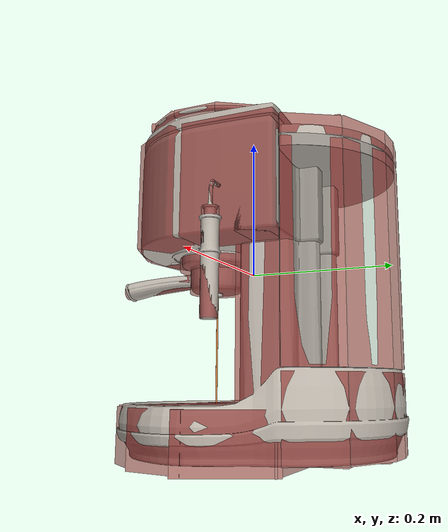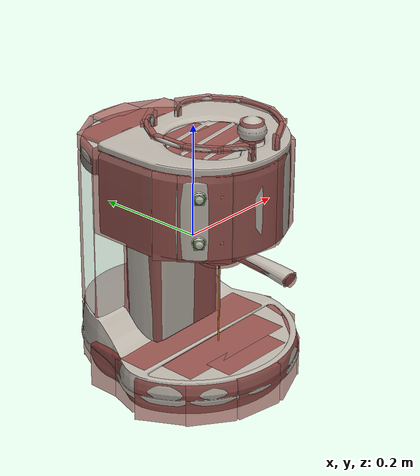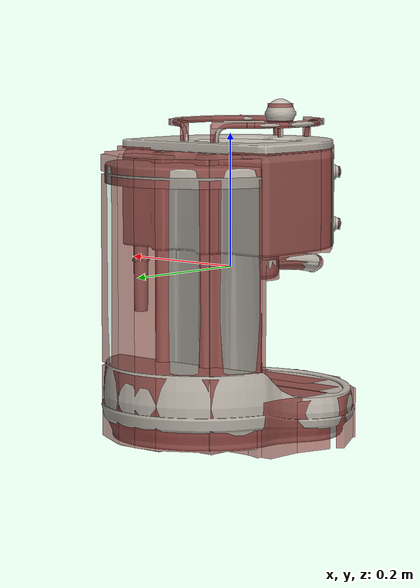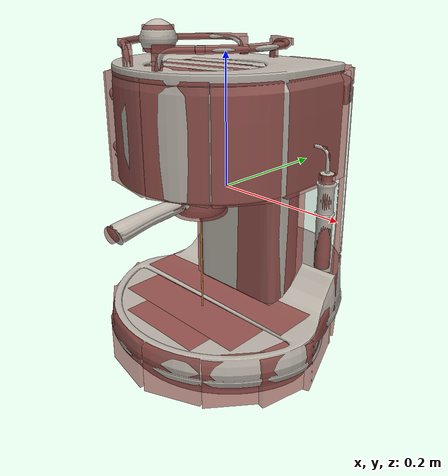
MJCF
<?xml version="1.0" encoding="utf-8"?>
<mujoco model="model">
  <option timestep="0.002" gravity="0.0 0.0 -9.81" />
  <compiler angle="radian" />
  <asset>
    <mesh file="visuals/Body001.obj" name="Body001_vis" />
    <mesh file="visuals/Button001.obj" name="Button001_vis" />
    <mesh file="visuals/Button002.obj" name="Button002_vis" />
    <mesh file="visuals/Container001.obj" name="Container001_vis" />
    <mesh file="visuals/Lever001.obj" name="Lever001_vis" />
    <mesh file="visuals/Lever002.obj" name="Lever002_vis" />
    <mesh file="visuals/Lid001.obj" name="Lid001_vis" />
    <mesh file="visuals/Lid002.obj" name="Lid002_vis" />
    <mesh file="visuals/Lid003.obj" name="Lid003_vis" />
    <texture file="visuals/T_BC001.png" name="Body001_material" type="2d" />
    <material name="Body001_material" rgba="1 1 1 1.0" texture="Body001_material" shininess="0.4472135901451111" specular="0.3103448502657381" />
    <texture file="visuals/T_BC001.png" name="Button001_material" type="2d" />
    <material name="Button001_material" rgba="1 1 1 1.0" texture="Button001_material" shininess="0.4472135901451111" specular="0.3103448502657381" />
    <texture file="visuals/T_BC001.png" name="Button002_material" type="2d" />
    <material name="Button002_material" rgba="1 1 1 1.0" texture="Button002_material" shininess="0.4472135901451111" specular="0.3103448502657381" />
    <material name="Container001_material" rgba="0.10878986120223999 0.10878986120223999 0.10878986120223999 0.20467835664749146" shininess="0.5" specular="0.3103448502657381" />
    <texture file="visuals/T_BC001.png" name="Lid003_material" type="2d" />
    <material name="Lid003_material" rgba="1 1 1 1.0" texture="Lid003_material" shininess="0.4472135901451111" specular="0.3103448502657381" />
    <texture file="visuals/T_BC001.png" name="Lever001_material" type="2d" />
    <material name="Lever001_material" rgba="1 1 1 1.0" texture="Lever001_material" shininess="0.4472135901451111" specular="0.3103448502657381" />
    <texture file="visuals/T_BC001.png" name="Lever002_material" type="2d" />
    <material name="Lever002_material" rgba="1 1 1 1.0" texture="Lever002_material" shininess="0.4472135901451111" specular="0.3103448502657381" />
    <texture file="visuals/T_BC001.png" name="Lid001_material" type="2d" />
    <material name="Lid001_material" rgba="1 1 1 1.0" texture="Lid001_material" shininess="0.4472135901451111" specular="0.3103448502657381" />
    <texture file="visuals/T_BC001.png" name="Lid002_material" type="2d" />
    <material name="Lid002_material" rgba="1 1 1 1.0" texture="Lid002_material" shininess="0.4472135901451111" specular="0.3103448502657381" />
  </asset>
  <default>
    <default class="visual">
      <geom conaffinity="0" contype="0" group="1" type="mesh" />
    </default>
    <default class="collision">
      <geom group="0" rgba="0.5 0 0 0.5" />
    </default>
    <default class="spawn">
      <geom group="0" rgba="1 1 1 0.5" contype="0" conaffinity="0" />
      <site group="0" rgba="1 1 1 0.5" />
    </default>
    <default class="region">
      <geom group="1" conaffinity="0" contype="0" rgba="0 1 0 0" />
    </default>
  </default>
  <worldbody>
    <body>
      <body name="object">
        <geom class="collision" type="box" pos="-0.11443996 -0.11638789 0.14093480" size="0.008190508000552654 0.00819050520658493 0.0004903351655229926" quat="0.6462324857711792 0.28702548146247864 -0.6462324261665344 0.28702548146247864" name="start_button_1" rgba="0.0 0.5 0 0.5" group="0" />
        <geom class="collision" type="box" pos="-0.11443996 -0.11638789 0.06300421" size="0.008190508000552654 0.00819050520658493 0.0004903351655229926" quat="0.6462324857711792 0.28702548146247864 -0.6462324261665344 0.28702548146247864" name="start_button_2" rgba="0.0 0.5 0 0.5" group="0" />
        <geom mesh="Body001_vis" type="mesh" solimp="0.998 0.998 0.001" solref="0.001 1" friction="0.95 0.3 0.1" class="visual" material="Body001_material" group="1" contype="0" conaffinity="0" />
        <geom class="collision" type="box" pos="0.00189697 0.04949101 -0.08756362" size="0.0807318463921547 0.03959117829799652 0.11778492480516434" quat="1.0 0.0 0.0 0.0" group="0" />
        <geom class="collision" type="box" pos="-0.10919119 0.02550621 0.10306462" size="0.03434810787439346 0.0633862167596817 0.07537300139665604" quat="1.0 0.0 0.0 0.0" group="0" />
        <geom class="collision" type="cylinder" pos="0.00465601 -0.12111796 0.22427276" size="0.01970338448882103 0.015624829567968845" quat="1.0 0.0 0.0 0.0" group="0" />
        <geom class="collision" type="cylinder" pos="0.00465601 -0.12111796 0.19617095" size="0.004328385926783085 0.01360324863344431" quat="1.0 0.0 0.0 0.0" group="0" />
        <geom class="collision" type="box" pos="0.10859726 -0.04013974 0.21493742" size="0.004523163661360741 0.03143675997853279 0.004523163661360741" quat="1.0 0.0 0.0 0.0" group="0" />
        <geom class="collision" type="box" pos="0.09399951 0.01669712 0.21493742" size="0.004523163661360741 0.03143675997853279 0.004523163661360741" quat="0.9607182145118713 0.0 0.0 0.2775256931781769" group="0" />
        <geom class="collision" type="box" pos="0.05724197 0.05229746 0.21493742" size="0.004523163661360741 0.03143675997853279 0.004523163661360741" quat="0.8607912063598633 0.0 0.0 0.5089582800865173" group="0" />
        <geom class="collision" type="box" pos="0.09291272 -0.09992216 0.21493742" size="0.004523163661360741 0.03143675997853279 0.004523163661360741" quat="0.9616172313690186 0.0 0.0 -0.27439436316490173" group="0" />
        <geom class="collision" type="box" pos="0.05980011 -0.13566471 0.21493742" size="0.004523163661360741 0.03143675997853279 0.004523163661360741" quat="0.8701815605163574 0.0 0.0 -0.49273115396499634" group="0" />
        <geom class="collision" type="box" pos="0.03333304 0.06456353 0.19955579" size="0.004523163661360741 0.004523166920989752 0.016055120155215263" quat="1.0 0.0 0.0 0.0" group="0" />
        <geom class="collision" type="box" pos="0.03333304 -0.14736555 0.19955577" size="0.004523163661360741 0.004523166920989752 0.016055120155215263" quat="1.0 0.0 0.0 0.0" group="0" />
        <geom class="collision" type="box" pos="-0.10114876 -0.04258428 0.21493742" size="0.004523163661360741 0.03143675997853279 0.004523165989667177" quat="1.0 0.0 0.0 0.0" group="0" />
        <geom class="collision" type="box" pos="-0.08655102 -0.09942113 0.21493742" size="0.004523163661360741 0.03143675997853279 0.004523165989667177" quat="0.9607182145118713 0.0 0.0 0.2775256931781769" group="0" />
        <geom class="collision" type="box" pos="-0.04979346 -0.13502152 0.21493741" size="0.0045231725089251995 0.031436774879693985 0.004523165989667177" quat="0.8607912063598633 0.0 0.0 0.5089582800865173" group="0" />
        <geom class="collision" type="box" pos="-0.08546417 0.01719815 0.21493742" size="0.004523163661360741 0.031436752527952194 0.004523163661360741" quat="0.9616172313690186 0.0 0.0 -0.27439436316490173" group="0" />
        <geom class="collision" type="box" pos="-0.05235156 0.05294068 0.21493744" size="0.004523163661360741 0.03143675997853279 0.004523165989667177" quat="0.8701815605163574 0.0 0.0 -0.49273115396499634" group="0" />
        <geom class="collision" type="box" pos="-0.02588453 -0.14728755 0.19955579" size="0.004523159470409155 0.004523175768554211 0.016055116429924965" quat="1.0 0.0 0.0 0.0" group="0" />
        <geom class="collision" type="box" pos="-0.02588451 0.06464151 0.19955579" size="0.0045231725089251995 0.004523166920989752 0.016055116429924965" quat="1.0 0.0 0.0 0.0" group="0" />
        <geom class="collision" type="box" pos="-0.12050646 0.12652259 -0.19322185" size="0.0033383583649992943 0.038740064948797226 0.05269257724285126" quat="0.9738687872886658 0.0 0.0 -0.22711150348186493" group="0" />
        <geom class="collision" type="box" pos="-0.06854369 0.18078141 -0.19322186" size="0.0033383583649992943 0.038740064948797226 0.05269256979227066" quat="0.4920442998409271 0.0 0.0 0.870570182800293" group="0" />
        <geom class="collision" type="box" pos="-0.01791486 0.20198310 -0.19322186" size="0.0033383583649992943 0.018953552469611168 0.05269255489110947" quat="0.6659803986549377 0.0 0.0 0.7459692358970642" group="0" />
        <geom class="collision" type="box" pos="0.01797082 0.20177022 -0.19322186" size="0.0033383583649992943 0.018953552469611168 0.05269256979227066" quat="0.7413256168365479 0.0 0.0 0.6711455583572388" group="0" />
        <geom class="collision" type="box" pos="0.07079972 0.18202680 -0.19322186" size="0.0033383583649992943 0.038740064948797226 0.05269256979227066" quat="0.8594831824302673 0.0 0.0 0.5111640095710754" group="0" />
        <geom class="collision" type="box" pos="0.12229306 0.12893678 -0.19322186" size="0.0033383583649992943 0.038740064948797226 0.05269256979227066" quat="0.9661666750907898 0.0 0.0 0.2579185664653778" group="0" />
        <geom class="collision" type="box" pos="0.00234563 0.17558722 -0.24538229" size="0.03884468972682953 0.020146992057561874 0.003411775454878807" quat="1.0 0.0 0.0 0.0" group="0" />
        <geom class="collision" type="box" pos="-0.00189139 0.12862815 -0.24538229" size="0.10514144599437714 0.03288181871175766 0.003411775454878807" quat="1.0 0.0 0.0 0.0" group="0" />
        <geom class="collision" type="box" pos="-0.08250707 -0.10227837 0.10306462" size="0.02460833080112934 0.0432954840362072 0.07537300139665604" quat="0.9480372667312622 0.0 0.0 0.31815922260284424" group="0" />
        <geom class="collision" type="box" pos="-0.02409175 -0.13637337 0.10514031" size="0.023709628731012344 0.0432954840362072 0.07537300139665604" quat="0.7632952928543091 0.0 0.0 0.6460497379302979" group="0" />
        <geom class="collision" type="box" pos="0.05348956 -0.13035722 0.10514031" size="0.02037210948765278 0.0432954840362072 0.07537300139665604" quat="0.5480373501777649 0.0 0.0 0.8364538550376892" group="0" />
        <geom class="collision" type="box" pos="0.10606021 -0.07816518 0.10417588" size="0.026491723954677582 0.0432954877614975 0.07478740066289902" quat="0.271138995885849 0.0 0.0 0.9625402092933655" group="0" />
        <geom class="collision" type="box" pos="-0.10672108 -0.07007420 0.10306462" size="0.023256944492459297 0.0432954840362072 0.07537300139665604" quat="0.9466404318809509 0.0 0.0 0.32229161262512207" group="0" />
        <geom class="collision" type="box" pos="0.11470061 0.02550621 0.10306462" size="0.034222282469272614 0.0633862167596817 0.07537300139665604" quat="1.0 0.0 0.0 0.0" group="0" />
        <geom class="collision" type="box" pos="0.00276437 0.05828728 0.10306462" size="0.14615850150585175 0.01950208842754364 0.07537300139665604" quat="1.0 0.0 0.0 0.0" group="0" />
        <geom class="collision" type="box" pos="-0.00757658 0.02803050 -0.21824804" size="0.1507406085729599 0.0633862167596817 0.040254101157188416" quat="1.0 0.0 0.0 0.0" group="0" />
        <geom class="collision" type="box" pos="-0.14465491 0.03410754 -0.22107260" size="0.012788098305463791 0.0633862167596817 0.03742953762412071" quat="0.9898115396499634 0.0 0.0 -0.1423838585615158" group="0" />
        <geom class="collision" type="box" pos="0.00487205 -0.09287699 -0.24997249" size="0.07528094202280045 0.0633862167596817 0.00852964911609888" quat="1.0 0.0 0.0 0.0" group="0" />
        <geom class="collision" type="box" pos="-0.10853484 -0.13844958 -0.22107258" size="0.005696524865925312 0.0432954840362072 0.03742954507470131" quat="0.8887274861335754 0.0 0.0 0.45843592286109924" group="0" />
        <geom class="collision" type="box" pos="-0.03048540 -0.17453471 -0.21899689" size="0.005134956445544958 0.0432954840362072 0.03742954507470131" quat="0.7632952928543091 0.0 0.0 0.6460497379302979" group="0" />
        <geom class="collision" type="box" pos="0.05799433 -0.16334796 -0.21899691" size="0.006392143201082945 0.0432954840362072 0.03742953762412071" quat="0.5480373501777649 0.0 0.0 0.8364538550376892" group="0" />
        <geom class="collision" type="box" pos="0.12643427 -0.11392322 -0.21996131" size="0.007415276486426592 0.0432954840362072 0.03684394061565399" quat="0.3355433940887451 0.0 0.0 0.9420247673988342" group="0" />
        <geom class="collision" type="box" pos="0.16167568 -0.04987194 -0.21996133" size="0.01123436912894249 0.0432954840362072 0.036843933165073395" quat="0.10881514102220535 0.0 0.0 0.9940620064735413" group="0" />
        <geom class="collision" type="box" pos="-0.16102667 -0.07486065 -0.22107258" size="0.006011230405420065 0.0432954840362072 0.03742954507470131" quat="0.966658890247345 0.0 0.0 0.25606754422187805" group="0" />
        <geom class="collision" type="box" pos="0.15010037 0.03224307 -0.22107258" size="0.014032161794602871 0.0633862167596817 0.03742954507470131" quat="0.9824390411376953 0.0 0.0 0.18658389151096344" group="0" />
        <body name="Button001">
          <geom mesh="Button001_vis" type="mesh" solimp="0.998 0.998 0.001" solref="0.001 1" friction="0.95 0.3 0.1" class="visual" material="Button001_material" group="1" contype="0" conaffinity="0" />
          <geom class="collision" type="cylinder" pos="-0.11255217 -0.11429884 0.06313412" size="0.008190508000552654 0.0018527028150856495" quat="0.6462324857711792 0.28702548146247864 -0.6462324261665344 0.28702548146247864" group="0" />
        </body>
        <body name="Button002">
          <geom mesh="Button002_vis" type="mesh" solimp="0.998 0.998 0.001" solref="0.001 1" friction="0.95 0.3 0.1" class="visual" material="Button002_material" group="1" contype="0" conaffinity="0" />
          <geom class="collision" type="cylinder" pos="-0.11246848 -0.11420624 0.14132536" size="0.008190508000552654 0.001977515872567892" quat="0.6462324857711792 0.28702548146247864 -0.6462324261665344 0.28702548146247864" group="0" />
        </body>
        <body name="Container001">
          <geom mesh="Container001_vis" type="mesh" solimp="0.998 0.998 0.001" solref="0.001 1" friction="0.95 0.3 0.1" class="visual" material="Container001_material" group="1" contype="0" conaffinity="0" />
          <geom class="collision" type="box" pos="0.12229306 0.12893678 0.00362982" size="0.0033383583649992943 0.038740064948797226 0.13910047709941864" quat="0.9661666750907898 0.0 0.0 0.2579185664653778" group="0" />
          <geom class="collision" type="box" pos="0.07079972 0.18202680 0.00362982" size="0.0033383583649992943 0.038740064948797226 0.13910047709941864" quat="0.8594831824302673 0.0 0.0 0.5111640095710754" group="0" />
          <geom class="collision" type="box" pos="0.01797082 0.20177022 0.00362982" size="0.0033383583649992943 0.018953552469611168 0.13910047709941864" quat="0.7413256168365479 0.0 0.0 0.6711455583572388" group="0" />
          <geom class="collision" type="box" pos="-0.01791486 0.20198310 0.00362983" size="0.0033383583649992943 0.018953552469611168 0.13910047709941864" quat="0.6659803986549377 0.0 0.0 0.7459692358970642" group="0" />
          <geom class="collision" type="box" pos="-0.01791486 0.20198310 0.00362983" size="0.0033383583649992943 0.018953552469611168 0.13910047709941864" quat="0.6659803986549377 0.0 0.0 0.7459692358970642" group="0" />
          <geom class="collision" type="box" pos="-0.01791486 0.20198310 0.00362983" size="0.0033383583649992943 0.018953552469611168 0.13910047709941864" quat="0.6659803986549377 0.0 0.0 0.7459692358970642" group="0" />
          <geom class="collision" type="box" pos="-0.06854369 0.18078141 0.00362982" size="0.0033383583649992943 0.038740064948797226 0.13910047709941864" quat="0.4920442998409271 0.0 0.0 0.870570182800293" group="0" />
          <geom class="collision" type="box" pos="-0.12050646 0.12652259 0.00362982" size="0.0033383583649992943 0.038740064948797226 0.13910047709941864" quat="0.9738687872886658 0.0 0.0 -0.22711150348186493" group="0" />
          <geom class="collision" type="box" pos="0.00227698 0.09628485 0.00359247" size="0.13645930588245392 0.0033739034552127123 0.1385265290737152" quat="1.0 0.0 0.0 0.0" group="0" />
          <geom class="collision" type="box" pos="-0.00189139 0.12862815 -0.13312437" size="0.10514144599437714 0.03288181871175766 0.003411775454878807" quat="1.0 0.0 0.0 0.0" group="0" />
          <geom class="collision" type="box" pos="0.00234563 0.17558722 -0.13312437" size="0.03884468972682953 0.020146992057561874 0.003411775454878807" quat="1.0 0.0 0.0 0.0" group="0" />
          <body name="Lid003">
            <geom mesh="Lid003_vis" type="mesh" solimp="0.998 0.998 0.001" solref="0.001 1" friction="0.95 0.3 0.1" class="visual" material="Lid003_material" group="1" contype="0" conaffinity="0" />
            <geom class="collision" type="box" pos="0.00227698 0.09628485 0.15945587" size="0.13646036386489868 0.003373921848833561 0.011830570176243782" quat="1.0 0.0 0.0 0.0" group="0" />
            <geom class="collision" type="box" pos="-0.12050646 0.12652259 0.15949326" size="0.0033383583649992943 0.038740064948797226 0.012402229011058807" quat="0.9738687872886658 0.0 0.0 -0.22711150348186493" group="0" />
            <geom class="collision" type="box" pos="-0.06854369 0.18078141 0.15949326" size="0.0033383583649992943 0.038740064948797226 0.012402220629155636" quat="0.4920442998409271 0.0 0.0 0.870570182800293" group="0" />
            <geom class="collision" type="box" pos="-0.01791486 0.20198310 0.15949329" size="0.0033383583649992943 0.018953552469611168 0.0124021852388978" quat="0.6659803986549377 0.0 0.0 0.7459692358970642" group="0" />
            <geom class="collision" type="box" pos="-0.01791486 0.20198310 0.15949329" size="0.0033383583649992943 0.018953552469611168 0.0124021852388978" quat="0.6659803986549377 0.0 0.0 0.7459692358970642" group="0" />
            <geom class="collision" type="box" pos="-0.01791486 0.20198310 0.15949329" size="0.0033383583649992943 0.018953552469611168 0.0124021852388978" quat="0.6659803986549377 0.0 0.0 0.7459692358970642" group="0" />
            <geom class="collision" type="box" pos="0.01797082 0.20177022 0.15949327" size="0.0033383583649992943 0.018953552469611168 0.012402210384607315" quat="0.7413256168365479 0.0 0.0 0.6711455583572388" group="0" />
            <geom class="collision" type="box" pos="0.07079972 0.18202680 0.15949327" size="0.0033383583649992943 0.038740064948797226 0.012402210384607315" quat="0.8594831824302673 0.0 0.0 0.5111640095710754" group="0" />
            <geom class="collision" type="box" pos="0.00234563 0.17558722 0.17226094" size="0.03884468972682953 0.020146992057561874 0.003411775454878807" quat="1.0 0.0 0.0 0.0" group="0" />
            <geom class="collision" type="box" pos="-0.00189139 0.12862815 0.17226094" size="0.10514144599437714 0.03288181871175766 0.003411775454878807" quat="1.0 0.0 0.0 0.0" group="0" />
            <geom class="collision" type="box" pos="0.12229306 0.12893678 0.15949327" size="0.0033383583649992943 0.038740064948797226 0.012402210384607315" quat="0.9661666750907898 0.0 0.0 0.2579185664653778" group="0" />
          </body>
        </body>
        <body name="Lever001">
          <geom mesh="Lever001_vis" type="mesh" solimp="0.998 0.998 0.001" solref="0.001 1" friction="0.95 0.3 0.1" class="visual" material="Lever001_material" group="1" contype="0" conaffinity="0" />
          <geom class="collision" type="cylinder" pos="0.00346954 -0.05657283 0.00339919" size="0.039640821516513824 0.027023576200008392" quat="1.0 0.0 0.0 0.0" density="0.001" group="0" />
          <geom class="collision" type="cylinder" pos="0.00346954 -0.15485348 -0.00740297" size="0.011335988529026508 0.056980688124895096" quat="0.6759827136993408 0.7369174957275391 0.0 0.0" density="0.001" group="0" />
          <geom class="collision" type="cylinder" pos="0.00346954 -0.05657283 0.01807771" size="0.05548214539885521 0.008703392930328846" quat="1.0 0.0 0.0 0.0" density="0.001" group="0" />
        </body>
        <body name="Lever002">
          <geom mesh="Lever002_vis" type="mesh" solimp="0.998 0.998 0.001" solref="0.001 1" friction="0.95 0.3 0.1" class="visual" material="Lever002_material" group="1" contype="0" conaffinity="0" />
          <geom class="collision" type="cylinder" pos="0.16925831 0.01665206 -0.01269605" size="0.010701263323426247 0.06714522838592529" quat="1.0 0.0 0.0 0.0" density="0.001" group="0" />
          <geom class="collision" type="cylinder" pos="0.16925831 0.01710608 0.06728740" size="0.0022424543276429176 0.012838222086429596" quat="1.0 0.0 0.0 0.0" density="0.001" group="0" />
          <geom class="collision" type="cylinder" pos="0.15686259 0.01710608 0.08784235" size="0.0022424543276429176 0.008915522135794163" quat="0.7071068286895752 0.0 -0.7071067690849304 0.0" density="0.001" group="0" />
          <geom class="collision" type="cylinder" pos="0.16664806 0.01710608 0.08290999" size="0.0022424543276429176 0.00435082009062171" quat="0.9478495717048645 0.0 -0.3187180757522583 0.0" density="0.001" group="0" />
        </body>
        <body name="Lid001">
          <geom mesh="Lid001_vis" type="mesh" solimp="0.998 0.998 0.001" solref="0.001 1" friction="0.95 0.3 0.1" class="visual" material="Lid001_material" group="1" contype="0" conaffinity="0" />
          <geom class="collision" type="box" pos="0.00189694 -0.03748141 0.18164497" size="0.07777687907218933 0.04223214462399483 0.0019421440083533525" quat="1.0 0.0 0.0 0.0" group="0" />
          <geom class="collision" type="box" pos="0.00189694 -0.08352392 0.18164497" size="0.06252610683441162 0.011090227402746677 0.0019421440083533525" quat="1.0 0.0 0.0 0.0" group="0" />
          <geom class="collision" type="box" pos="0.00189694 0.01823497 0.18164497" size="0.04047929123044014 0.015090744942426682 0.0019421440083533525" quat="1.0 0.0 0.0 0.0" group="0" />
        </body>
        <body name="Lid002">
          <geom mesh="Lid002_vis" type="mesh" solimp="0.998 0.998 0.001" solref="0.001 1" friction="0.95 0.3 0.1" class="visual" material="Lid002_material" group="1" contype="0" conaffinity="0" />
          <geom class="collision" type="box" pos="-0.00457960 -0.07352178 -0.18463674" size="0.1189410462975502 0.033708397299051285 0.0019421444740146399" quat="1.0 0.0 0.0 0.0" group="0" />
          <geom class="collision" type="box" pos="0.00189694 -0.11986429 -0.18463674" size="0.07223173975944519 0.025448080152273178 0.0019421444740146399" quat="1.0 0.0 0.0 0.0" group="0" />
        </body>
        <site type="cylinder" rgba="0.8 0.5 0.25 1" size="0.0012810324551537633 0.07821378856897354" pos="0.00307217 -0.05631966 -0.10461302" name="coffee_liquid" />
        <site rgba="0 0 0 0" size="0.009999999776482582 0.009999999776482582" pos="0.00308522 -0.07627321 -0.17970529" name="receptacle_place_site" />
        <geom class="region" name="reg_main" type="box" pos="-4.999999997368221e-09 0.013604955000000002 -2.0500000000311935e-07" size="0.185748245 0.198370395 0.248062025" group="1" />
      </body>
    </body>
  </worldbody>
</mujoco>
